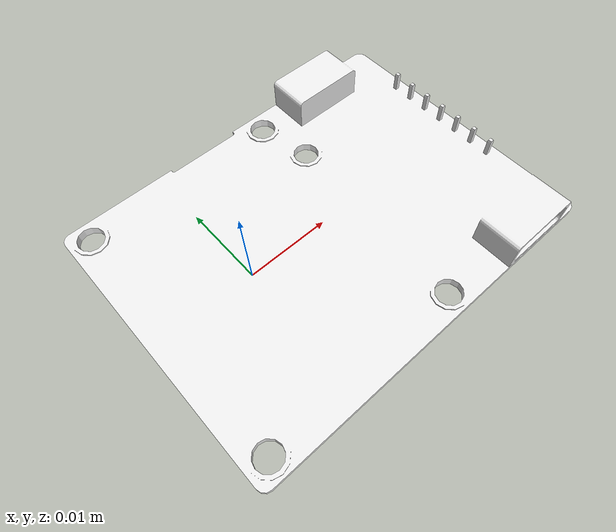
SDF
<?xml version="1.0" ?>
<sdf version="1.5">
  <model name="px4flow">
    <link name="link">
      <pose>0 0 0 -1.5707963259 1.5707963259 0</pose>
      <inertial>
        <mass>0.05</mass>
        <inertia>
          <ixx>4.166666666666667e-06</ixx>
          <iyy>5.208333333333334e-07</iyy>
          <izz>3.854166666666666e-06</izz>
        </inertia>
      </inertial>
      <collision name='Optical_Flow_collision'>
        <pose frame=''>0 -0.01 0 0 3.14 1.5708</pose>
        <geometry>
          <mesh>
            <scale>1 1 1</scale>
            <uri>model://px4flow/meshes/Optical_Flow.STL</uri>
          </mesh>
        </geometry>
      </collision>
      <visual name='Optical_Flow_visual'>
        <pose frame=''>0 -0.01 0 0 3.14 1.5708</pose>
        <geometry>
          <mesh>
            <scale>1 1 1</scale>
            <uri>model://px4flow/meshes/Optical_Flow.STL</uri>
          </mesh>
        </geometry>
        <material>
          <script>
            <name>Gazebo/White</name>
            <uri>file://media/materials/scripts/gazebo.material</uri>
          </script>
        </material>
      </visual>

      <!-- Px4flow IMU -->
      <sensor name="px4flow" type="imu">
        <pose>0 0 0 0 -1.5707963259 3.1415926518</pose>
        <always_on>1</always_on>
        <update_rate>100</update_rate>
      </sensor>

      <!--752x480 MT9V034 image sensor, only 64x64 pixels used-->
      <sensor name="px4flow" type="camera">
        <always_on>true</always_on>
        <update_rate>200</update_rate>
        <visualize>true</visualize>
        <topic>/px4flow</topic>
        <camera>
          <horizontal_fov>0.25</horizontal_fov>
          <lens>
            <type>gnomonical</type>
            <scale_to_hfov>false</scale_to_hfov>
          </lens>
          <image>
            <width>64</width>
            <height>64</height>
            <format>L8</format>
          </image>
          <clip>
            <near>0.1</near>
            <far>100</far>
          </clip>
          <noise>
            <type>gaussian</type>
            <mean>0.0</mean>
            <stddev>0.001</stddev>
          </noise>
        </camera>
        <plugin name="opticalflow_plugin" filename="libgazebo_opticalflow_plugin.so">
            <robotNamespace></robotNamespace>
            <outputRate>100</outputRate>
            <hasGyro>true</hasGyro>
            <gyroTopic>/px4flow/imu</gyroTopic>
        </plugin>
      </sensor>
      <sensor name="flow_camera" type="camera">
        <always_on>true</always_on>
        <update_rate>100</update_rate>
        <visualize>true</visualize>
        <camera>
          <horizontal_fov>0.25</horizontal_fov>
          <lens>
            <type>gnomonical</type>
            <scale_to_hfov>false</scale_to_hfov>
          </lens>
          <image>
            <width>64</width>
            <height>64</height>
            <format>L8</format>
          </image>
          <clip>
            <near>0.1</near>
            <far>100</far>
          </clip>
          <noise>
            <type>gaussian</type>
            <mean>0.0</mean>
            <stddev>0.001</stddev>
          </noise>
        </camera>
        <plugin name="camera_controller" filename="libgazebo_ros_camera.so">
              <robotNamespace></robotNamespace>
              <cameraName>px4flow_camera</cameraName>
              <imageTopicName>image_raw</imageTopicName>
              <cameraInfoTopicName>camera_info</cameraInfoTopicName>
              <frameName>px4flow_frame</frameName>
              <hackBaseline>0.07</hackBaseline>
              <distortionK1>0.0</distortionK1>
              <distortionK2>0.0</distortionK2>
              <distortionK3>0.0</distortionK3>
              <distortionT1>0.0</distortionT1>
              <distortionT2>0.0</distortionT2>
        </plugin>
      </sensor>
    </link>

  </model>

</sdf>

<!-- vim: set et ft=xml fenc=utf-8 ff=unix sts=0 sw=2 ts=2 : -->
